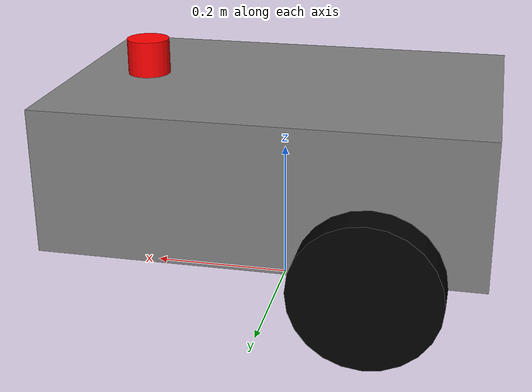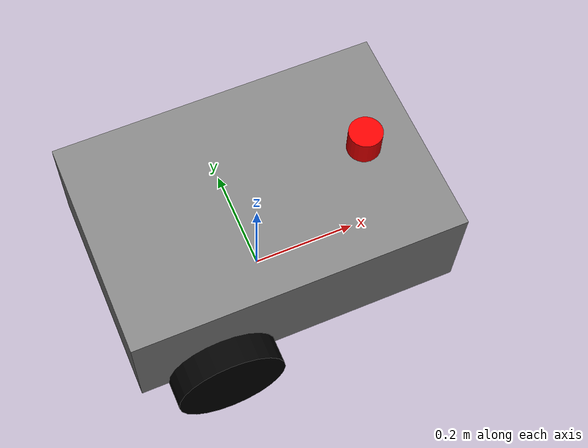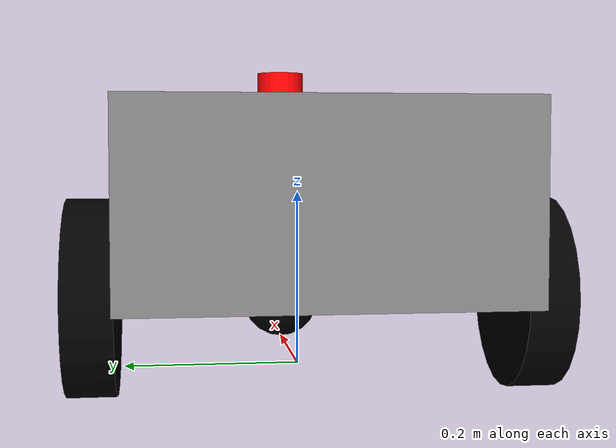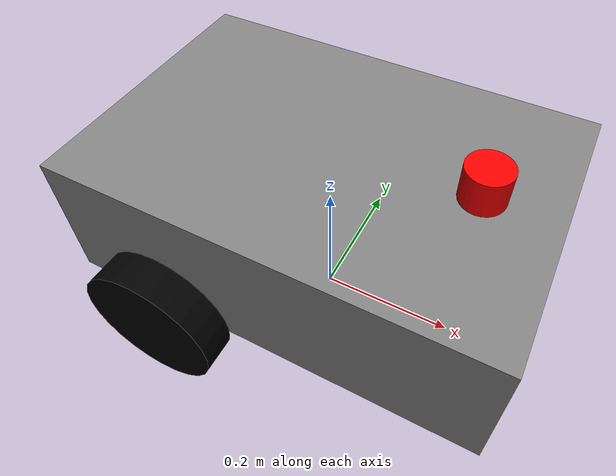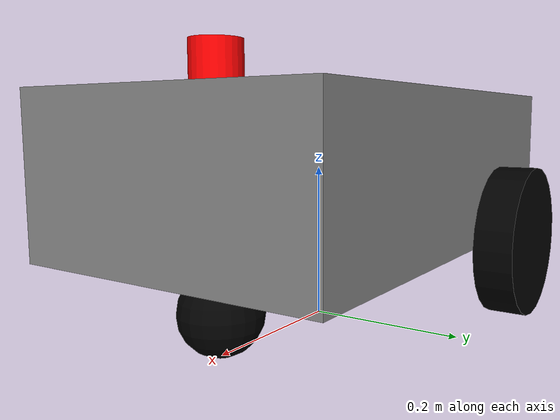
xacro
<?xml version="1.0"?>
<robot name="simple_amr" xmlns:xacro="http://www.ros.org/wiki/xacro">

  <link name="main_base"/>

  <joint name="base_footprint_joint" type="fixed">
    <parent link="main_base"/>
    <child link="base_footprint"/>
    <origin xyz="0 0 0" rpy="0 0 0"/>
  </joint>

  <link name="base_footprint"/>

  <link name="base_link">
    <visual>
      <geometry>
        <box size="0.6 0.4 0.2"/>
      </geometry>
      <origin xyz="0 0 0.1" rpy="0 0 0"/>
      <material name="gray">
        <color rgba="0.5 0.5 0.5 1"/>
      </material>
    </visual>
    <collision>
      <geometry>
        <box size="0.6 0.4 0.2"/>
      </geometry>
      <origin xyz="0 0 0.1" rpy="0 0 0"/>
    </collision>
    <inertial>
      <mass value="5"/>
      <inertia ixx="0.1" iyy="0.1" izz="0.1" ixy="0.0" ixz="0.0" iyz="0.0"/>
    </inertial>
  </link>

  <link name="left_wheel">
    <visual>
      <geometry>
        <cylinder length="0.05" radius="0.1"/>
      </geometry>
      <origin xyz="0 0 0" rpy="1.5708 0 0"/>
      <material name="black">
        <color rgba="0 0 0 1"/>
      </material>
    </visual>
    <collision>
      <geometry>
        <cylinder length="0.05" radius="0.1"/>
      </geometry>
      <origin xyz="0 0 0" rpy="1.5708 0 0"/>
    </collision>
    <inertial>
      <mass value="1"/>
      <inertia ixx="0.01" iyy="0.01" izz="0.01" ixy="0.0" ixz="0.0" iyz="0.0"/>
    </inertial>
  </link>

  <link name="right_wheel">
    <visual>
      <geometry>
        <cylinder length="0.05" radius="0.1"/>
      </geometry>
      <origin xyz="0 0 0" rpy="1.5708 0 0"/>
      <material name="black"/>
    </visual>
    <collision>
      <geometry>
        <cylinder length="0.05" radius="0.1"/>
      </geometry>
      <origin xyz="0 0 0" rpy="1.5708 0 0"/>
    </collision>
    <inertial>
      <mass value="1"/>
      <inertia ixx="0.01" iyy="0.01" izz="0.01" ixy="0.0" ixz="0.0" iyz="0.0"/>
    </inertial>
  </link>

  <link name="stability_wheel">
    <visual>
      <geometry>
        <sphere radius="0.05"/>
      </geometry>
      <origin xyz="0 0 0" rpy="0 0 0"/>
      <material name="black"/>
    </visual>
    <collision>
      <geometry>
        <sphere radius="0.05"/>
      </geometry>
      <origin xyz="0 0 0" rpy="0 0 0"/>
    </collision>
    <inertial>
      <mass value="1"/>
      <inertia ixx="0.001" iyy="0.001" izz="0.001" ixy="0.0" ixz="0.0" iyz="0.0"/>
    </inertial>
  </link>

  <link name="Lidar_link">
    <visual>
      <geometry>
        <cylinder length="0.05" radius="0.03"/>
      </geometry>
      <origin xyz="0 0 0" rpy="0 0 0"/>
      <material name="red">
        <color rgba="1 0 0 1"/>
      </material>
    </visual>
    <collision>
      <geometry>
        <cylinder length="0.05" radius="0.03"/>
      </geometry>
      <origin xyz="0 0 0" rpy="0 0 0"/>
    </collision>
    <inertial>
      <mass value="1"/>
      <inertia ixx="0.001" iyy="0.001" izz="0.001" ixy="0.0" ixz="0.0" iyz="0.0"/>
    </inertial>
  </link>

  <joint name="base_joint" type="fixed">
    <parent link="main_base"/>
    <child link="base_link"/>
    <origin xyz="0 0 0.1" rpy="0 0 0"/>
  </joint>

  <joint name="left_wheel_joint" type="continuous">
    <parent link="base_link"/>
    <child link="left_wheel"/>
    <origin xyz="-0.15 0.225 0" rpy="0 0 0"/>
    <axis xyz="0 1 0"/>
  </joint>

  <joint name="right_wheel_joint" type="continuous">
    <parent link="base_link"/>
    <child link="right_wheel"/>
    <origin xyz="-0.15 -0.225 0" rpy="0 0 0"/>
    <axis xyz="0 1 0"/>
  </joint>

  <joint name="stability_wheel_joint" type="fixed">
    <parent link="base_link"/>
    <child link="stability_wheel"/>
    <origin xyz="0.2 0 -0.05" rpy="0 0 0"/>
  </joint>

  <joint name="Lidar_joint" type="fixed">
    <parent link="base_link"/>
    <child link="Lidar_link"/>
    <origin xyz="0.2 0 0.225" rpy="0 0 0"/>
  </joint>

  <gazebo reference="left_wheel">
    <mu1 value="0.5"/>
    <mu2 value="0.5"/>
    <kp value="1000000.0" />
    <kd value="10.0" />
  </gazebo>

  <gazebo reference="right_wheel">
    <mu1 value="0.5"/>
    <mu2 value="0.5"/>
    <kp value="1000000.0" />
    <kd value="10.0" />
  </gazebo>

  <gazebo reference="stability_wheel">
    <mu1 value="0.001"/>
    <mu2 value="0.001"/>
  </gazebo>

  <gazebo>
    <plugin name="diff_drive" filename="libgazebo_ros_diff_drive.so">
      <ros>
        <remapping>cmd_vel:=cmd_vel</remapping>
      </ros>
      <left_joint>left_wheel_joint</left_joint>
      <right_joint>right_wheel_joint</right_joint>
      <wheel_separation>0.45</wheel_separation>
      <wheel_diameter>0.2</wheel_diameter>

      <odomentry_frame>odom</odomentry_frame>
      <robot_base_frame>main_base</robot_base_frame>
      <publish_odom>true</publish_odom>
      <publish_odom_tf>true</publish_odom_tf>
      <publish_wheel_tf>true</publish_wheel_tf>
    </plugin>
  </gazebo>

  <gazebo reference="Lidar_link">
    <sensor name="laser" type="ray">
      <pose> 0 0 0 0 0 0 </pose>
      <visualize>true</visualize>
      <update_rate>10</update_rate>
      <ray>
        <scan>
          <horizontal>
            <samples>360</samples>
            <resolution>1</resolution>
            <min_angle>-3.14</min_angle>
            <max_angle>3.14</max_angle>
          </horizontal>
        </scan>
        <range>
          <min>0.3</min>
          <max>12</max>
          <resolution>0.01</resolution>
        </range>
      </ray>
      <plugin name="laser_controller" filename="libgazebo_ros_ray_sensor.so">
        <ros>
          <remapping>~/out:=scan</remapping>
        </ros>
        <output_type>sensor_msgs/LaserScan</output_type>
        <frame_name>Lidar_link</frame_name>
      </plugin>
    </sensor>
  </gazebo>

</robot>
